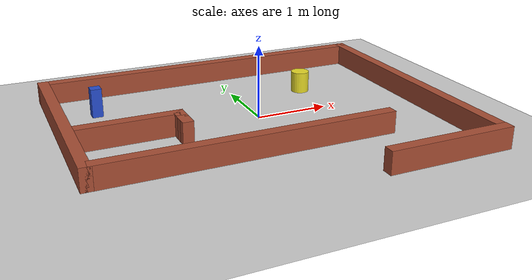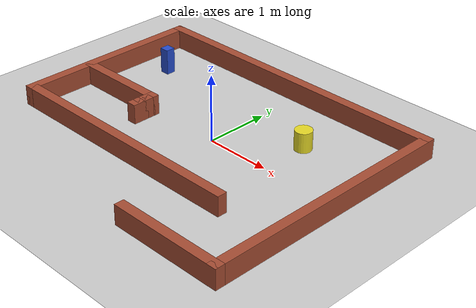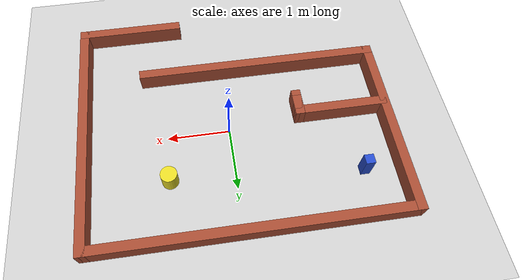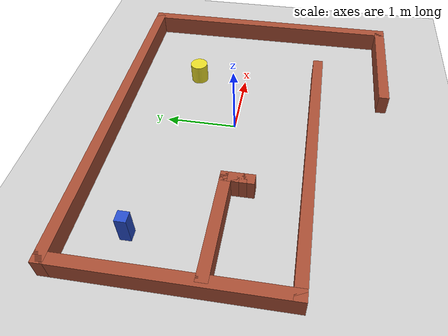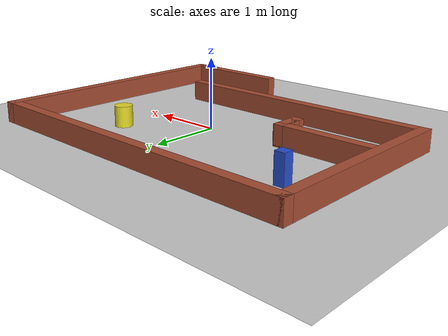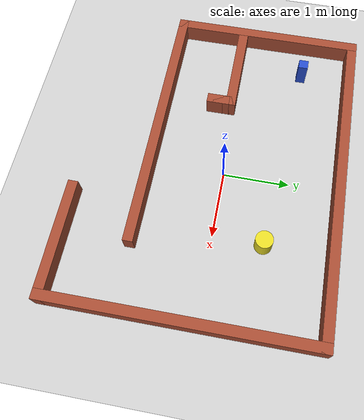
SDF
<sdf version="1.9">
 <world name="default">
  <light name="sun" type="directional">
   <pose>0 0 10 0 -0 0</pose>
   <diffuse>0.8 0.8 0.8 1</diffuse>
   <specular>0.1 0.1 0.1 1</specular>
   <attenuation>
    <range>1000</range>
    <constant>0.9</constant>
    <linear>0.01</linear>
    <quadratic>0.001</quadratic>
   </attenuation>
   <direction>-0.5 0.5 -1</direction>
   <spot><inner_angle>0</inner_angle><outer_angle>0</outer_angle><falloff>0</falloff></spot>
  </light>
  <model name="ground_plane">
   <static>1</static>
   <link name="link">
    <collision name="collision">
     <geometry><plane><normal>0 0 1</normal><size>100 100</size></plane></geometry>
     <surface><friction><mu>100</mu><mu2>50</mu2></friction></surface>
    </collision>
    <visual name="visual">
     <cast_shadows>false</cast_shadows>
     <geometry><plane><normal>0 0 1</normal><size>100 100</size></plane></geometry>
     <material>
      <script>
       <uri>https://fuel.gazebosim.org/1.0/OpenRobotics/models/Materials/scripts/gazebo.material</uri>
       <name>Gazebo/Grey</name>
      </script>
     </material>
    </visual>
   </link>
  </model>
  <gravity>0 0 -9.8</gravity>
  <physics name="default_physics" type="ode">
   <max_step_size>0.001</max_step_size>
   <real_time_factor>1</real_time_factor>
   <real_time_update_rate>1000</real_time_update_rate>
   <solver><type>quick</type><iters>50</iters><sor>1.3</sor></solver>
  </physics>
  <scene><ambient>0.4 0.4 0.4 1</ambient><background>0.7 0.7 0.7 1</background><shadows>1</shadows></scene>
  <spherical_coordinates>
   <surface_model>EARTH_WGS84</surface_model>
   <latitude_deg>0</latitude_deg>
   <longitude_deg>0</longitude_deg>
   <elevation>0</elevation>
   <heading_deg>0</heading_deg>
  </spherical_coordinates>
  <plugin filename="gz-sim-physics-system" name="gz::sim::systems::PhysicsSystem"/>
  <plugin filename="gz-sim-user-commands-system" name="gz::sim::systems::UserCommandsSystem"/>
  <plugin filename="gz-sim-scene-broadcaster-system" name="gz::sim::systems::SceneBroadcasterSystem"/>
  <plugin filename="gz-sim-sensors-system" name="gz::sim::systems::SensorsSystem">
   <render_engine>ogre2</render_engine>
  </plugin>
  <model name="simple_small_room">
   <pose>-0.130244 1.1166 0 0 -0 0</pose>
   <link name="Wall_0">
    <collision name="Wall_0_Collision">
     <geometry><box><size>5 0.15 0.3</size></box></geometry>
     <pose>0 0 0.15 0 -0 0</pose>
    </collision>
    <visual name="Wall_0_Visual">
     <pose>0 0 0.15 0 -0 0</pose>
     <geometry><box><size>5 0.15 0.3</size></box></geometry>
     <material>
      <script>
       <uri>https://fuel.gazebosim.org/1.0/OpenRobotics/models/Materials/scripts/gazebo.material</uri>
       <name>Gazebo/Bricks</name>
      </script>
      <ambient>1 1 1 1</ambient>
     </material>
     <meta><layer>0</layer></meta>
    </visual>
    <pose>0 0.6075 0 0 -0 0</pose>
   </link>
   <link name="Wall_1">
    <collision name="Wall_1_Collision">
     <geometry><box><size>4 0.15 0.3</size></box></geometry>
     <pose>0 0 0.15 0 -0 0</pose>
    </collision>
    <visual name="Wall_1_Visual">
     <pose>0 0 0.15 0 -0 0</pose>
     <geometry><box><size>4 0.15 0.3</size></box></geometry>
     <material>
      <script>
       <uri>https://fuel.gazebosim.org/1.0/OpenRobotics/models/Materials/scripts/gazebo.material</uri>
       <name>Gazebo/Bricks</name>
      </script>
      <ambient>1 1 1 1</ambient>
     </material>
     <meta><layer>0</layer></meta>
    </visual>
    <pose>2.425 -1.3175 0 0 -0 -1.5708</pose>
   </link>
   <link name="Wall_10">
    <collision name="Wall_10_Collision">
     <geometry><box><size>0.25 0.15 0.3</size></box></geometry>
     <pose>0 0 0.15 0 -0 0</pose>
    </collision>
    <visual name="Wall_10_Visual">
     <pose>0 0 0.15 0 -0 0</pose>
     <geometry><box><size>0.25 0.15 0.3</size></box></geometry>
     <material>
      <script>
       <uri>https://fuel.gazebosim.org/1.0/OpenRobotics/models/Materials/scripts/gazebo.material</uri>
       <name>Gazebo/Bricks</name>
      </script>
      <ambient>1 1 1 1</ambient>
     </material>
     <meta><layer>0</layer></meta>
    </visual>
    <pose>-1.025 -1.4525 0 0 -0 -1.5708</pose>
   </link>
   <link name="Wall_2">
    <collision name="Wall_2_Collision">
     <geometry><box><size>1.75 0.15 0.3</size></box></geometry>
     <pose>0 0 0.15 0 -0 0</pose>
    </collision>
    <visual name="Wall_2_Visual">
     <pose>0 0 0.15 0 -0 0</pose>
     <geometry><box><size>1.75 0.15 0.3</size></box></geometry>
     <material>
      <script>
       <uri>https://fuel.gazebosim.org/1.0/OpenRobotics/models/Materials/scripts/gazebo.material</uri>
       <name>Gazebo/Bricks</name>
      </script>
      <ambient>1 1 1 1</ambient>
     </material>
     <meta><layer>0</layer></meta>
    </visual>
    <pose>1.625 -3.2425 0 0 -0 3.14159</pose>
   </link>
   <link name="Wall_4">
    <collision name="Wall_4_Collision">
     <geometry><box><size>3 0.15 0.3</size></box></geometry>
     <pose>0 0 0.15 0 -0 0</pose>
    </collision>
    <visual name="Wall_4_Visual">
     <pose>0 0 0.15 0 -0 0</pose>
     <geometry><box><size>3 0.15 0.3</size></box></geometry>
     <material>
      <script>
       <uri>https://fuel.gazebosim.org/1.0/OpenRobotics/models/Materials/scripts/gazebo.material</uri>
       <name>Gazebo/Bricks</name>
      </script>
      <ambient>1 1 1 1</ambient>
     </material>
     <meta><layer>0</layer></meta>
    </visual>
    <pose>-2.425 -0.8175 0 0 -0 -1.5708</pose>
   </link>
   <link name="Wall_5">
    <collision name="Wall_5_Collision">
     <geometry><box><size>4 0.15 0.3</size></box></geometry>
     <pose>0 0 0.15 0 -0 0</pose>
    </collision>
    <visual name="Wall_5_Visual">
     <pose>0 0 0.15 0 -0 0</pose>
     <geometry><box><size>4 0.15 0.3</size></box></geometry>
     <material>
      <script>
       <uri>https://fuel.gazebosim.org/1.0/OpenRobotics/models/Materials/scripts/gazebo.material</uri>
       <name>Gazebo/Bricks</name>
      </script>
      <ambient>1 1 1 1</ambient>
     </material>
     <meta><layer>0</layer></meta>
    </visual>
    <pose>-0.5 -2.2425 0 0 -0 0</pose>
   </link>
   <link name="Wall_7">
    <collision name="Wall_7_Collision">
     <geometry><box><size>1.5 0.15 0.3</size></box></geometry>
     <pose>0 0 0.15 0 -0 0</pose>
    </collision>
    <visual name="Wall_7_Visual">
     <pose>0 0 0.15 0 -0 0</pose>
     <geometry><box><size>1.5 0.15 0.3</size></box></geometry>
     <material>
      <script>
       <uri>https://fuel.gazebosim.org/1.0/OpenRobotics/models/Materials/scripts/gazebo.material</uri>
       <name>Gazebo/Bricks</name>
      </script>
      <ambient>1 1 1 1</ambient>
     </material>
     <meta><layer>0</layer></meta>
    </visual>
    <pose>-1.7 -1.2025 0 0 -0 0</pose>
   </link>
   <link name="Wall_8">
    <collision name="Wall_8_Collision">
     <geometry><box><size>0.25 0.15 0.3</size></box></geometry>
     <pose>0 0 0.15 0 -0 0</pose>
    </collision>
    <visual name="Wall_8_Visual">
     <pose>0 0 0.15 0 -0 0</pose>
     <geometry><box><size>0.25 0.15 0.3</size></box></geometry>
     <material>
      <script>
       <uri>https://fuel.gazebosim.org/1.0/OpenRobotics/models/Materials/scripts/gazebo.material</uri>
       <name>Gazebo/Bricks</name>
      </script>
      <ambient>1 1 1 1</ambient>
     </material>
     <meta><layer>0</layer></meta>
    </visual>
    <pose>-1.025 -1.2525 0 0 -0 -1.5708</pose>
   </link>
   <link name="Wall_9">
    <collision name="Wall_9_Collision">
     <geometry><box><size>0.25 0.15 0.3</size></box></geometry>
     <pose>0 0 0.15 0 -0 0</pose>
    </collision>
    <visual name="Wall_9_Visual">
     <pose>0 0 0.15 0 -0 0</pose>
     <geometry><box><size>0.25 0.15 0.3</size></box></geometry>
     <material>
      <script>
       <uri>https://fuel.gazebosim.org/1.0/OpenRobotics/models/Materials/scripts/gazebo.material</uri>
       <name>Gazebo/Bricks</name>
      </script>
      <ambient>1 1 1 1</ambient>
     </material>
     <meta><layer>0</layer></meta>
    </visual>
    <pose>-1.025 -1.3525 0 0 -0 -1.5708</pose>
   </link>
   <static>1</static>
  </model>
  <model name="unit_cylinder">
   <pose>1.0097 0.743716 0.149992 1e-06 -1e-06 0</pose>
   <link name="link">
    <inertial>
     <mass>1</mass>
     <inertia><ixx>0.145833</ixx><ixy>0</ixy><ixz>0</ixz><iyy>0.145833</iyy><iyz>0</iyz><izz>0.125</izz></inertia>
    </inertial>
    <collision name="collision">
     <geometry><cylinder><radius>0.128667</radius><length>0.3</length></cylinder></geometry>
    </collision>
    <visual name="visual">
     <geometry><cylinder><radius>0.128667</radius><length>0.3</length></cylinder></geometry>
     <material>
      <script>
       <name>Gazebo/Yellow</name>
       <uri>https://fuel.gazebosim.org/1.0/OpenRobotics/models/Materials/scripts/gazebo.material</uri>
      </script>
     </material>
    </visual>
   </link>
  </model>
  <model name="unit_box">
   <pose>-1.98394 0.961335 0.2 1e-06 -2e-06 7e-06</pose>
   <link name="link">
    <inertial>
     <mass>1</mass>
     <inertia>
      <ixx>0.166667</ixx>
      <ixy>0</ixy>
      <ixz>0</ixz>
      <iyy>0.166667</iyy>
      <iyz>0</iyz>
      <izz>0.166667</izz>
     </inertia>
    </inertial>
    <collision name="collision"><geometry><box><size>0.145813 0.14615 0.4</size></box></geometry></collision>
    <visual name="visual">
     <geometry><box><size>0.145813 0.14615 0.4</size></box></geometry>
     <material>
      <script>
       <name>Gazebo/Blue</name>
       <uri>https://fuel.gazebosim.org/1.0/OpenRobotics/models/Materials/scripts/gazebo.material</uri>
      </script>
     </material>
    </visual>
   </link>
  </model>
 </world>
</sdf>
